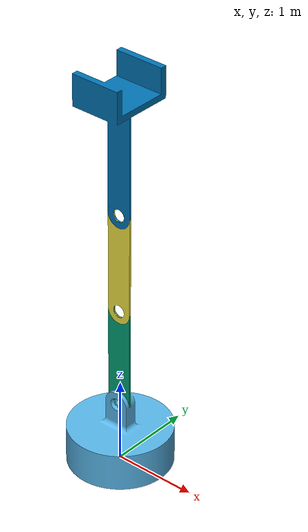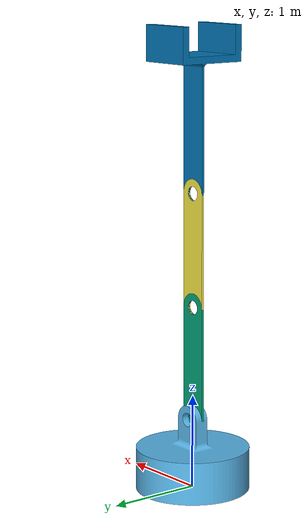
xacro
<?xml version="1.0"?>

<robot xmlns:xacro="https://www.ros.org/wiki/xacro" name="arduinobot">

    <xacro:include filename="$(find arduinobot_description)/urdf/arduinobot_gazebo.xacro"/>
    <xacro:include filename="$(find arduinobot_description)/urdf/arduinobot_ros2_control.xacro"/>

    <xacro:property name="PI" value="3.14159"/>
    <xacro:property name="effort" value="30.0"/>
    <xacro:property name="velocity" value="10.0"/>

    <xacro:macro name="default_inertial" params="mass">
        <inertial>
            <mass value="${mass}"/>
            <inertia    ixx="1.0" ixy="0.0" ixz="0.0"
                        iyy="1.0" iyz="0.0"
                        izz="1.0"/>
        </inertial>
    </xacro:macro>

<xacro:macro name="default_transmission" params="number">
    <transmission name="transmission_${number}">
        <plugin>
            transmission_interface/SimpleTransmission
        </plugin>
        <actuator name="motor_${number}" role="actuator1"/>
        <joint name="joint_${number}" role="joint1">
            <mechanical_reduction>
                1.0
            </mechanical_reduction>
        </joint>
    </transmission>
</xacro:macro>

    <link name="world"/>

    <!-- Base_Simple -->
    <link name="base_link">
        <xacro:default_inertial mass="1.0"/>
        <visual>
            <origin rpy="0 0 0" xyz="0 0 0"/>
            <geometry>
                <mesh filename="package://arduinobot_description/meshes/Base_Simple.stl" scale="0.1 0.1 0.1"/>
            </geometry>
        </visual>
        <collision>
            <origin rpy="0 0 0" xyz="0 0 0"/>
            <geometry>
                <mesh filename="package://arduinobot_description/meshes/Base_Simple.stl" scale="0.1 0.1 0.1"/>
            </geometry>
        </collision>
    </link>

    <!-- Fix-Joint Base_Simple to World -->
    <joint name="virtual_joint" type="fixed">
        <parent link="world"/>
        <child link="base_link"/>
        <origin rpy="0 0 0" xyz="0 0 0"/>
    </joint>

    <!-- Shoulder_Simple -->
    <link name="shoulder_link">
        <xacro:default_inertial mass="0.019"/>
        <visual>
            <origin rpy="${PI/2} 0 0" xyz="0 0 .6"/>
            <geometry>
                <mesh filename="package://arduinobot_description/meshes/Shoulder_Simple.stl" scale="0.1 0.1 0.1"/>
            </geometry>
        </visual>
        <collision>
            <origin rpy="${PI/2} 0 0" xyz="0 0 .6"/>
            <geometry>
                <mesh filename="package://arduinobot_description/meshes/Shoulder_Simple.stl" scale="0.1 0.1 0.1"/>
            </geometry>
        </collision>
    </link>

    <!-- Revolute-Joint Shoulder_Simple to Base_Simple -->
    <joint name="joint_1" type="revolute">
        <parent link="base_link"/>
        <child link="shoulder_link"/>
        <axis xyz="0 1 0"/>
        <origin rpy="0 0 0" xyz="0 0 .75"/>
        <limit lower="-${PI/2}" upper="${PI/2}" effort="${effort}" velocity="${velocity}"/>
    </joint>

    <!-- Elbow_Simple -->
    <link name="elbow_link">
        <xacro:default_inertial mass="0.019"/>
        <visual>
            <origin rpy="${PI/2} 0 0" xyz="0 0 .6"/>
            <geometry>
                <mesh filename="package://arduinobot_description/meshes/Elbow_Simple.stl" scale="0.1 0.1 0.1"/>
            </geometry>
        </visual>
        <collision>
            <origin rpy="${PI/2} 0 0" xyz="0 0 .6"/>
            <geometry>
                <mesh filename="package://arduinobot_description/meshes/Elbow_Simple.stl" scale="0.1 0.1 0.1"/>
            </geometry>
        </collision>
    </link>

    <!-- Revolute-Joint Elbow_Simple to Shoulder_Simple -->
    <joint name="joint_2" type="revolute">
        <parent link="shoulder_link"/>
        <child link="elbow_link"/>
        <axis xyz="0 1 0"/>
        <origin rpy="0 0 0" xyz="0 0 1.2"/>
        <limit lower="-${PI/2}" upper="${PI/2}" effort="${effort}" velocity="${velocity}"/>
    </joint>

    <!-- Gripper_Simple -->
    <link name="gripper_link">
        <xacro:default_inertial mass="0.137"/>
        <visual>
            <origin rpy="${PI/2} 0 0" xyz="0 0 .6"/>
            <geometry>
                <mesh filename="package://arduinobot_description/meshes/Gripper_Simple.stl" scale="0.1 0.1 0.1"/>
            </geometry>
        </visual>
        <collision>
            <origin rpy="${PI/2} 0 0" xyz="0 0 .6"/>
            <geometry>
                <mesh filename="package://arduinobot_description/meshes/Gripper_Simple.stl" scale="0.1 0.1 0.1"/>
            </geometry>
        </collision>
    </link>

    <!-- Revolute-Joint Elbow_Simple to Shoulder_Simple -->
    <joint name="joint_3" type="revolute">
        <parent link="elbow_link"/>
        <child link="gripper_link"/>
        <axis xyz="0 1 0"/>
        <origin rpy="0 0 0" xyz="0 0 1.2"/>
        <limit lower="-${PI/2}" upper="${PI/2}" effort="${effort}" velocity="${velocity}"/>
    </joint>

    <xacro:default_transmission number="1"/>
    <xacro:default_transmission number="2"/>
    <xacro:default_transmission number="3"/>

</robot>
